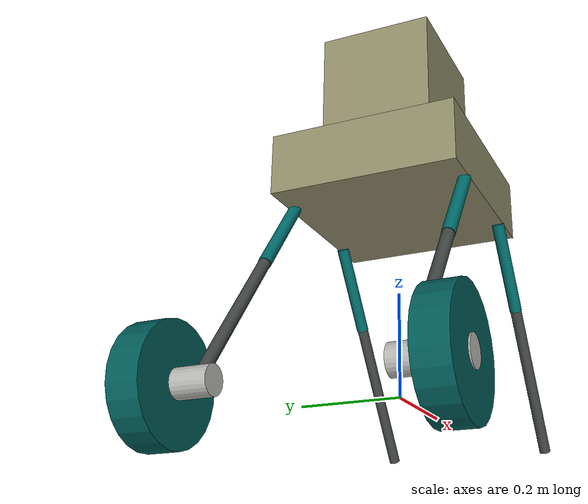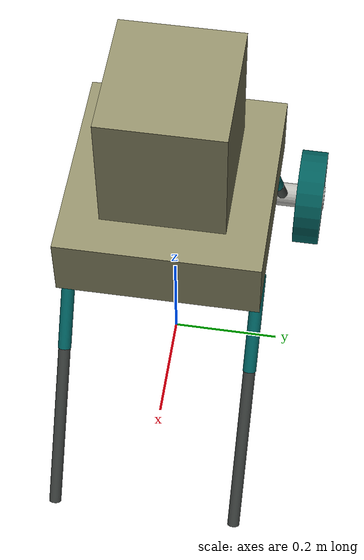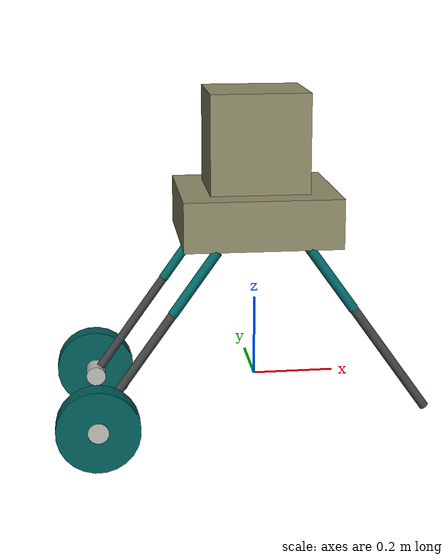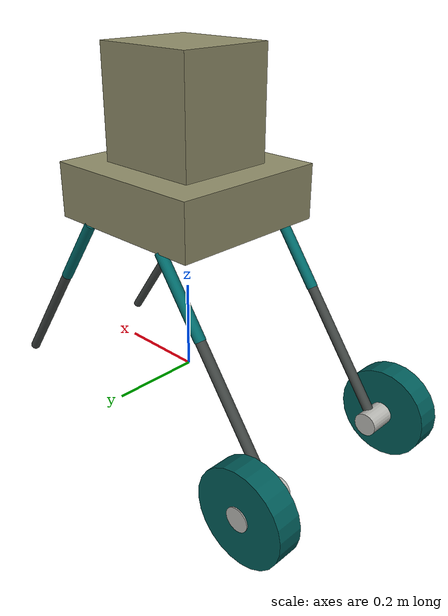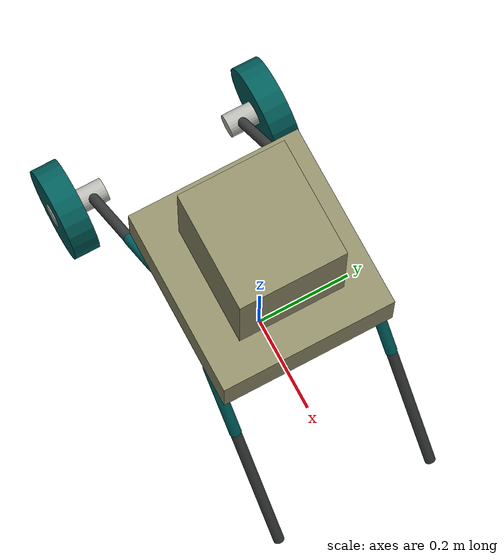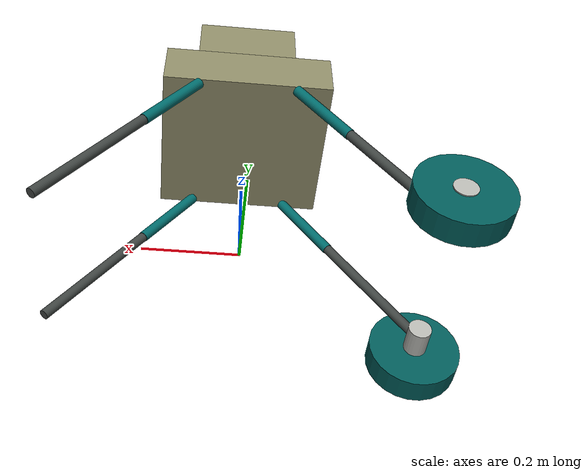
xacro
<?xml version="1.0"?>
<robot xmlns:xacro="http://www.ros.org/wiki/xacro" name="five_bar_wheel_leg_balance_car">
    <xacro:include filename="$(find car)/model/car.urdf" />

    <ros2_control name="car_system" type="system">
        <hardware>
            <plugin>lqr_controller/RealHardware</plugin>
        </hardware>

        <joint name="left_front_hip_joint">
            <command_interface name="position" />
            <command_interface name="velocity" />
            <command_interface name="effort" />
            <command_interface name="kp" />
            <command_interface name="kd" />
            <state_interface name="position" />
            <state_interface name="velocity" />
            <state_interface name="effort" />
        </joint>

        <joint name="left_rear_hip_joint">
            <command_interface name="position" />
            <command_interface name="velocity" />
            <command_interface name="effort" />
            <command_interface name="kp" />
            <command_interface name="kd" />
            <state_interface name="position" />
            <state_interface name="velocity" />
            <state_interface name="effort" />
        </joint>

        <joint name="left_wheel_joint">
            <command_interface name="position" />
            <command_interface name="velocity" />
            <command_interface name="effort" />
            <command_interface name="kp" />
            <command_interface name="kd" />
            <state_interface name="position" />
            <state_interface name="velocity" />
            <state_interface name="effort" />
        </joint>

        <joint name="right_front_hip_joint">
            <command_interface name="position" />
            <command_interface name="velocity" />
            <command_interface name="effort" />
            <command_interface name="kp" />
            <command_interface name="kd" />
            <state_interface name="position" />
            <state_interface name="velocity" />
            <state_interface name="effort" />
        </joint>

        <joint name="right_rear_hip_joint">
            <command_interface name="position" />
            <command_interface name="velocity" />
            <command_interface name="effort" />
            <command_interface name="kp" />
            <command_interface name="kd" />
            <state_interface name="position" />
            <state_interface name="velocity" />
            <state_interface name="effort" />
        </joint>

        <joint name="right_wheel_joint">
            <command_interface name="position" />
            <command_interface name="velocity" />
            <command_interface name="effort" />
            <command_interface name="kp" />
            <command_interface name="kd" />
            <state_interface name="position" />
            <state_interface name="velocity" />
            <state_interface name="effort" />
        </joint>
    </ros2_control>
</robot>

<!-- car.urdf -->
<robot name="five_bar_wheel_leg_balance_car">
    <material name="body_mat">
        <color rgba="0.56 0.55 0.41 1.0" />
    </material>
    <material name="link_teal">
        <color rgba="0.0 0.42 0.42 1.0" />
    </material>
    <material name="link_dark">
        <color rgba="0.25 0.27 0.26 1.0" />
    </material>
    <material name="wheel_mat">
        <color rgba="0.0 0.36 0.35 1.0" />
    </material>
    <material name="metal_mat">
        <color rgba="0.72 0.72 0.70 1.0" />
    </material>

    <link name="world" />

    <joint name="floating_base" type="floating">
        <parent link="world" />
        <child link="base_link" />
        <origin xyz="0 0 0" rpy="0 0 0" />
    </joint>

    <link name="base_link">
        <inertial>
            <origin xyz="0 0 0.4865" rpy="0 0 0" />
            <mass value="2.30" />
            <inertia ixx="0.0423" ixy="0.0" ixz="0.0" iyy="0.0447" iyz="0.0" izz="0.0406" />
        </inertial>
        <visual>
            <origin xyz="0 0 0.42" rpy="0 0 0" />
            <geometry>
                <box size="0.38 0.36 0.12" />
            </geometry>
            <material name="body_mat" />
        </visual>
        <collision>
            <origin xyz="0 0 0.42" rpy="0 0 0" />
            <geometry>
                <box size="0.38 0.36 0.12" />
            </geometry>
        </collision>
        <visual>
            <origin xyz="0 0 0.60" rpy="0 0 0" />
            <geometry>
                <box size="0.24 0.22 0.24" />
            </geometry>
            <material name="body_mat" />
        </visual>
        <collision>
            <origin xyz="0 0 0.60" rpy="0 0 0" />
            <geometry>
                <box size="0.24 0.22 0.24" />
            </geometry>
        </collision>
    </link>

    <!-- Left five-bar wheel leg, link plane y=0.17, wheel center y=0.23. -->
    <link name="left_front_upper_link">
        <inertial>
            <origin xyz="0.0922 0 0" rpy="0 0 0" />
            <mass value="0.09" />
            <inertia ixx="0.00012" ixy="0.0" ixz="0.0" iyy="0.00029" iyz="0.0" izz="0.00022" />
        </inertial>
        <visual>
            <origin xyz="0.0922 0 0" rpy="0 1.5704 0" />
            <geometry>
                <cylinder radius="0.012" length="0.1844" />
            </geometry>
            <material name="link_teal" />
        </visual>
        <collision>
            <origin xyz="0.0922 0 0" rpy="0 1.5704 0" />
            <geometry>
                <cylinder radius="0.012" length="0.1844" />
            </geometry>
        </collision>
    </link>

    <joint name="left_front_hip_joint" type="revolute">
        <parent link="base_link" />
        <child link="left_front_upper_link" />
        <origin xyz="0.11 0.17 0.36" rpy="0 0 0" />
        <axis xyz="0 1 0" />
        <limit lower="0.1" upper="1.8" effort="18" velocity="10" />
        <dynamics damping="0.04" friction="0.01" />
    </joint>

    <link name="left_front_lower_link">
        <inertial>
            <origin xyz="0.1565 0 0" rpy="0 0 0" />
            <mass value="0.12" />
            <inertia ixx="0.00018" ixy="0.0" ixz="0.0" iyy="0.00108" iyz="0.0" izz="0.00094" />
        </inertial>
        <visual>
            <origin xyz="0.1565 0 0" rpy="0 -1.57 0" />
            <geometry>
                <cylinder radius="0.011" length="0.3130" />
            </geometry>
            <material name="link_dark" />
        </visual>
        <collision>
            <origin xyz="0.1565 0 0" rpy="0 -1.57 0" />
            <geometry>
                <cylinder radius="0.011" length="0.3130" />
            </geometry>
        </collision>
    </link>

    <joint name="left_front_knee_joint" type="revolute">
        <parent link="left_front_upper_link" />
        <child link="left_front_lower_link" />
        <origin xyz="0.1844 0 0" rpy="0 0 0" />
        <axis xyz="0 1 0" />
        <limit lower="0" upper="3.14159" effort="3" velocity="12" />
        <dynamics damping="0.02" friction="0.004" />
    </joint>

    <link name="left_rear_upper_link">
        <inertial>
            <origin xyz="0.0922 0 0" rpy="0 0 0" />
            <mass value="0.09" />
            <inertia ixx="0.00012" ixy="0.0" ixz="0.0" iyy="0.00029" iyz="0.0" izz="0.00022" />
        </inertial>
        <visual>
            <origin xyz="0.0922 0 0" rpy="0 1.5704 0" />
            <geometry>
                <cylinder radius="0.012" length="0.1844" />
            </geometry>
            <material name="link_teal" />
        </visual>
        <collision>
            <origin xyz="0.0922 0 0" rpy="0 1.5704 0" />
            <geometry>
                <cylinder radius="0.012" length="0.1844" />
            </geometry>
        </collision>
    </link>

    <joint name="left_rear_hip_joint" type="revolute">
        <parent link="base_link" />
        <child link="left_rear_upper_link" />
        <origin xyz="-0.11 0.17 0.36" rpy="0 0 0" />
        <axis xyz="0 1 0" />
        <limit lower="1.34159" upper="3.041592" effort="18" velocity="10" />
        <dynamics damping="0.04" friction="0.01" />
    </joint>

    <link name="left_rear_lower_link">
        <inertial>
            <origin xyz="0.1565 0 0" rpy="0 0 0" />
            <mass value="0.12" />
            <inertia ixx="0.00018" ixy="0.0" ixz="0.0" iyy="0.00108" iyz="0.0" izz="0.00094" />
        </inertial>
        <visual>
            <origin xyz="0.1565 0 0" rpy="0 -1.57 0" />
            <geometry>
                <cylinder radius="0.011" length="0.3130" />
            </geometry>
            <material name="link_dark" />
        </visual>
        <collision>
            <origin xyz="0.1565 0 0" rpy="0 -1.57 0" />
            <geometry>
                <cylinder radius="0.011" length="0.3130" />
            </geometry>
        </collision>
    </link>

    <joint name="left_rear_knee_joint" type="revolute">
        <parent link="left_rear_upper_link" />
        <child link="left_rear_lower_link" />
        <origin xyz="0.1844 0 0" rpy="0 0 0" />
        <axis xyz="0 1 0" />
        <limit lower="-3.14159" upper="0" effort="3" velocity="12" />
        <dynamics damping="0.02" friction="0.004" />
    </joint>

    <link name="left_wheel_carrier">
        <inertial>
            <origin xyz="0 0.03 0" rpy="0 0 0" />
            <mass value="0.09" />
            <inertia ixx="0.00008" ixy="0.0" ixz="0.0" iyy="0.00004" iyz="0.0" izz="0.00008" />
        </inertial>
        <visual>
            <origin xyz="0 0.03 0" rpy="1.5708 0 0" />
            <geometry>
                <cylinder radius="0.025" length="0.12" />
            </geometry>
            <material name="metal_mat" />
        </visual>
        <collision>
            <origin xyz="0 0.03 0" rpy="1.5708 0 0" />
            <geometry>
                <cylinder radius="0.025" length="0.12" />
            </geometry>
        </collision>
    </link>

    <joint name="left_rear_ankle_joint" type="revolute">
        <parent link="left_rear_lower_link" />
        <child link="left_wheel_carrier" />
        <origin xyz="0.3130 0 0" rpy="0 0 0" />
        <axis xyz="0 1 0" />
        <limit lower="-2.80" upper="2.80" effort="3" velocity="12" />
        <dynamics damping="0.02" friction="0.004" />
    </joint>

    <link name="left_wheel">
        <inertial>
            <origin xyz="0 0 0" rpy="0 0 0" />
            <mass value="0.32" />
            <inertia ixx="0.00102" ixy="0.0" ixz="0.0" iyy="0.00102" iyz="0.0" izz="0.00160" />
        </inertial>
        <visual>
            <origin xyz="0 0 0" rpy="1.5708 0 0" />
            <geometry>
                <cylinder radius="0.10" length="0.055" />
            </geometry>
            <material name="wheel_mat" />
        </visual>
        <collision>
            <origin xyz="0 0 0" rpy="1.5708 0 0" />
            <geometry>
                <cylinder radius="0.10" length="0.055" />
            </geometry>
        </collision>
    </link>

    <joint name="left_wheel_joint" type="continuous">
        <parent link="left_wheel_carrier" />
        <child link="left_wheel" />
        <origin xyz="0 0.06 0" rpy="0 0 0" />
        <axis xyz="0 1 0" />
        <limit effort="16" velocity="45" />
        <dynamics damping="0.01" friction="0.004" />
    </joint>

    <!-- Right five-bar wheel leg, mirrored about the x-z plane. -->
    <link name="right_front_upper_link">
        <inertial>
            <origin xyz="0.0922 0 0" rpy="0 0 0" />
            <mass value="0.09" />
            <inertia ixx="0.00012" ixy="0.0" ixz="0.0" iyy="0.00029" iyz="0.0" izz="0.00022" />
        </inertial>
        <visual>
            <origin xyz="0.0922 0 0" rpy="0 1.5704 0" />
            <geometry>
                <cylinder radius="0.012" length="0.1844" />
            </geometry>
            <material name="link_teal" />
        </visual>
        <collision>
            <origin xyz="0.0922 0 0" rpy="0 1.5704 0" />
            <geometry>
                <cylinder radius="0.012" length="0.1844" />
            </geometry>
        </collision>
    </link>

    <joint name="right_front_hip_joint" type="revolute">
        <parent link="base_link" />
        <child link="right_front_upper_link" />
        <origin xyz="0.11 -0.17 0.36" rpy="0 0 0" />
        <axis xyz="0 1 0" />
        <limit lower="0.1" upper="1.8" effort="18" velocity="10" />
        <dynamics damping="0.04" friction="0.01" />
    </joint>

    <link name="right_front_lower_link">
        <inertial>
            <origin xyz="0.1565 0 0" rpy="0 0 0" />
            <mass value="0.12" />
            <inertia ixx="0.00018" ixy="0.0" ixz="0.0" iyy="0.00108" iyz="0.0" izz="0.00094" />
        </inertial>
        <visual>
            <origin xyz="0.1565 0 0" rpy="0 -1.57 0" />
            <geometry>
                <cylinder radius="0.011" length="0.3130" />
            </geometry>
            <material name="link_dark" />
        </visual>
        <collision>
            <origin xyz="0.1565 0 0" rpy="0 -1.57 0" />
            <geometry>
                <cylinder radius="0.011" length="0.3130" />
            </geometry>
        </collision>
    </link>

    <joint name="right_front_knee_joint" type="revolute">
        <parent link="right_front_upper_link" />
        <child link="right_front_lower_link" />
        <origin xyz="0.1844 0 0" rpy="0 0 0" />
        <axis xyz="0 1 0" />
        <limit lower="0" upper="3.14159" effort="3" velocity="12" />
        <dynamics damping="0.02" friction="0.004" />
    </joint>

    <link name="right_rear_upper_link">
        <inertial>
            <origin xyz="0.0922 0 0" rpy="0 0 0" />
            <mass value="0.09" />
            <inertia ixx="0.00012" ixy="0.0" ixz="0.0" iyy="0.00029" iyz="0.0" izz="0.00022" />
        </inertial>
        <visual>
            <origin xyz="0.0922 0 0" rpy="0 1.5704 0" />
            <geometry>
                <cylinder radius="0.012" length="0.1844" />
            </geometry>
            <material name="link_teal" />
        </visual>
        <collision>
            <origin xyz="0.0922 0 0" rpy="0 1.5704 0" />
            <geometry>
                <cylinder radius="0.012" length="0.1844" />
            </geometry>
        </collision>
    </link>

    <joint name="right_rear_hip_joint" type="revolute">
        <parent link="base_link" />
        <child link="right_rear_upper_link" />
        <origin xyz="-0.11 -0.17 0.36" rpy="0 0 0" />
        <axis xyz="0 1 0" />
        <limit lower="1.34159" upper="3.041592" effort="18" velocity="10" />
        <dynamics damping="0.04" friction="0.01" />
    </joint>

    <link name="right_rear_lower_link">
        <inertial>
            <origin xyz="0.1565 0 0" rpy="0 0 0" />
            <mass value="0.12" />
            <inertia ixx="0.00018" ixy="0.0" ixz="0.0" iyy="0.00108" iyz="0.0" izz="0.00094" />
        </inertial>
        <visual>
            <origin xyz="0.1565 0 0" rpy="0 -1.57 0" />
            <geometry>
                <cylinder radius="0.011" length="0.3130" />
            </geometry>
            <material name="link_dark" />
        </visual>
        <collision>
            <origin xyz="0.1565 0 0" rpy="0 -1.57 0" />
            <geometry>
                <cylinder radius="0.011" length="0.3130" />
            </geometry>
        </collision>
    </link>

    <joint name="right_rear_knee_joint" type="revolute">
        <parent link="right_rear_upper_link" />
        <child link="right_rear_lower_link" />
        <origin xyz="0.1844 0 0" rpy="0 0 0" />
        <axis xyz="0 1 0" />
        <limit lower="-3.14159" upper="0" effort="3" velocity="12" />
        <dynamics damping="0.02" friction="0.004" />
    </joint>

    <link name="right_wheel_carrier">
        <inertial>
            <origin xyz="0 -0.03 0" rpy="0 0 0" />
            <mass value="0.09" />
            <inertia ixx="0.00008" ixy="0.0" ixz="0.0" iyy="0.00004" iyz="0.0" izz="0.00008" />
        </inertial>
        <visual>
            <origin xyz="0 -0.03 0" rpy="1.5708 0 0" />
            <geometry>
                <cylinder radius="0.025" length="0.12" />
            </geometry>
            <material name="metal_mat" />
        </visual>
        <collision>
            <origin xyz="0 -0.03 0" rpy="1.5708 0 0" />
            <geometry>
                <cylinder radius="0.025" length="0.12" />
            </geometry>
        </collision>
    </link>

    <joint name="right_rear_ankle_joint" type="revolute">
        <parent link="right_rear_lower_link" />
        <child link="right_wheel_carrier" />
        <origin xyz="0.3130 0 0" rpy="0 0 0" />
        <axis xyz="0 1 0" />
        <limit lower="-2.80" upper="2.80" effort="3" velocity="12" />
        <dynamics damping="0.02" friction="0.004" />
    </joint>

    <link name="right_wheel">
        <inertial>
            <origin xyz="0 0 0" rpy="0 0 0" />
            <mass value="0.32" />
            <inertia ixx="0.00102" ixy="0.0" ixz="0.0" iyy="0.00102" iyz="0.0" izz="0.00160" />
        </inertial>
        <visual>
            <origin xyz="0 0 0" rpy="1.5708 0 0" />
            <geometry>
                <cylinder radius="0.10" length="0.055" />
            </geometry>
            <material name="wheel_mat" />
        </visual>
        <collision>
            <origin xyz="0 0 0" rpy="1.5708 0 0" />
            <geometry>
                <cylinder radius="0.10" length="0.055" />
            </geometry>
        </collision>
    </link>

    <joint name="right_wheel_joint" type="continuous">
        <parent link="right_wheel_carrier" />
        <child link="right_wheel" />
        <origin xyz="0 -0.06 0" rpy="0 0 0" />
        <axis xyz="0 1 0" />
        <limit effort="16" velocity="45" />
        <dynamics damping="0.01" friction="0.004" />
    </joint>
</robot>
